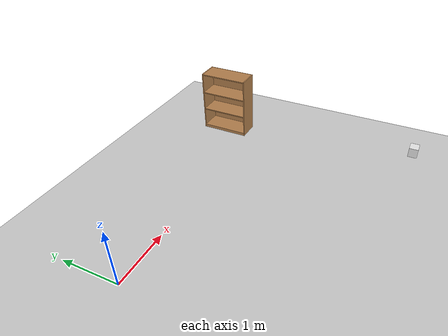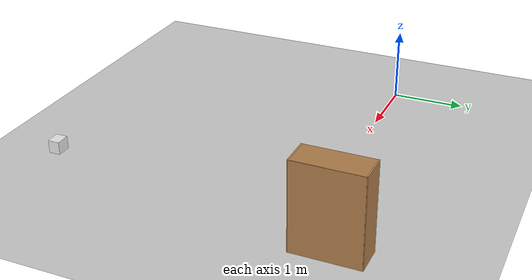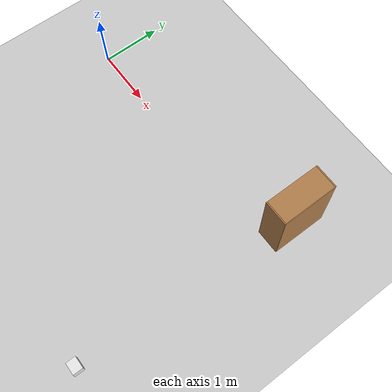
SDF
<sdf version="1.6">
 <world name="default">
  <model name="ground_plane">
   <static>1</static>
   <link name="link">
    <collision name="collision">
     <geometry><plane><normal>0 0 1</normal><size>100 100</size></plane></geometry>
     <surface>
      <contact><collide_bitmask>65535</collide_bitmask></contact>
      <friction><ode><mu>100</mu><mu2>50</mu2></ode></friction>
     </surface>
    </collision>
    <visual name="visual">
     <cast_shadows>0</cast_shadows>
     <geometry><plane><normal>0 0 1</normal><size>100 100</size></plane></geometry>
     <material>
      <script><uri>file://media/materials/scripts/gazebo.material</uri><name>Gazebo/Grey</name></script>
     </material>
    </visual>
   </link>
  </model>
  <model name="bookshelf_clone_0_clone">
   <static>1</static>
   <link name="link">
    <inertial><mass>1</mass></inertial>
    <collision name="back">
     <pose>0 0.005 0.6 0 -0 0</pose>
     <geometry><box><size>0.9 0.01 1.2</size></box></geometry>
    </collision>
    <visual name="visual1">
     <pose>0 0.005 0.6 0 -0 0</pose>
     <geometry><box><size>0.9 0.01 1.2</size></box></geometry>
     <material>
      <script><uri>file://media/materials/scripts/gazebo.material</uri><name>Gazebo/Wood</name></script>
     </material>
    </visual>
    <collision name="left_side">
     <pose>0.45 -0.195 0.6 0 -0 0</pose>
     <geometry><box><size>0.02 0.4 1.2</size></box></geometry>
    </collision>
    <visual name="visual2">
     <pose>0.45 -0.195 0.6 0 -0 0</pose>
     <geometry><box><size>0.02 0.4 1.2</size></box></geometry>
     <material>
      <script><uri>file://media/materials/scripts/gazebo.material</uri><name>Gazebo/Wood</name></script>
     </material>
    </visual>
    <collision name="right_side">
     <pose>-0.45 -0.195 0.6 0 -0 0</pose>
     <geometry><box><size>0.02 0.4 1.2</size></box></geometry>
    </collision>
    <visual name="visual3">
     <pose>-0.45 -0.195 0.6 0 -0 0</pose>
     <geometry><box><size>0.02 0.4 1.2</size></box></geometry>
     <material>
      <script><uri>file://media/materials/scripts/gazebo.material</uri><name>Gazebo/Wood</name></script>
     </material>
    </visual>
    <collision name="bottom">
     <pose>0 -0.195 0.03 0 -0 0</pose>
     <geometry><box><size>0.88 0.4 0.06</size></box></geometry>
    </collision>
    <visual name="visual4">
     <pose>0 -0.195 0.03 0 -0 0</pose>
     <geometry><box><size>0.88 0.4 0.06</size></box></geometry>
     <material>
      <script><uri>file://media/materials/scripts/gazebo.material</uri><name>Gazebo/Wood</name></script>
     </material>
    </visual>
    <collision name="top">
     <pose>0 -0.195 1.19 0 -0 0</pose>
     <geometry><box><size>0.88 0.4 0.02</size></box></geometry>
    </collision>
    <visual name="visual5">
     <pose>0 -0.195 1.19 0 -0 0</pose>
     <geometry><box><size>0.88 0.4 0.02</size></box></geometry>
     <material>
      <script><uri>file://media/materials/scripts/gazebo.material</uri><name>Gazebo/Wood</name></script>
     </material>
    </visual>
    <collision name="low_shelf">
     <pose>0 -0.195 0.43 0 -0 0</pose>
     <geometry><box><size>0.88 0.4 0.02</size></box></geometry>
    </collision>
    <visual name="visual6">
     <pose>0 -0.195 0.43 0 -0 0</pose>
     <geometry><box><size>0.88 0.4 0.02</size></box></geometry>
     <material>
      <script><uri>file://media/materials/scripts/gazebo.material</uri><name>Gazebo/Wood</name></script>
     </material>
    </visual>
    <collision name="high_shelf">
     <pose>0 -0.195 0.8 0 -0 0</pose>
     <geometry><box><size>0.88 0.4 0.02</size></box></geometry>
    </collision>
    <visual name="visual7">
     <pose>0 -0.195 0.8 0 -0 0</pose>
     <geometry><box><size>0.88 0.4 0.02</size></box></geometry>
     <material>
      <script><uri>file://media/materials/scripts/gazebo.material</uri><name>Gazebo/Wood</name></script>
     </material>
    </visual>
   </link>
   <pose>4.43785 0.538857 0 0 0 -1.5708</pose>
  </model>
  <model name="package_box_0_clone_0">
   <link name="link">
    <inertial>
     <mass>1</mass>
     <inertia>
      <ixx>0.166667</ixx>
      <ixy>0</ixy>
      <ixz>0</ixz>
      <iyy>0.166667</iyy>
      <iyz>0</iyz>
      <izz>0.166667</izz>
     </inertia>
    </inertial>
    <visual name="visual">
     <geometry><box><size>0.186354 0.153313 0.168908</size></box></geometry>
     <material>
      <script><name>Gazebo/White</name><uri>file://media/materials/scripts/gazebo.material</uri></script>
      <shader type="pixel"><normal_map>__default__</normal_map></shader>
      <ambient>1 1 1 1</ambient>
      <diffuse>1 1 1 1</diffuse>
      <specular>0 0 0 1</specular>
      <emissive>0 0 0 1</emissive>
     </material>
    </visual>
    <collision name="collision">
     <geometry><box><size>0.186354 0.153313 0.168908</size></box></geometry>
     <surface>
      <friction>
       <ode><mu>1</mu><mu2>1</mu2><fdir1>0 0 0</fdir1><slip1>0</slip1><slip2>0</slip2></ode>
       <torsional>
        <coefficient>1</coefficient>
        <patch_radius>0</patch_radius>
        <surface_radius>0</surface_radius>
        <use_patch_radius>1</use_patch_radius>
        <ode><slip>0</slip></ode>
       </torsional>
      </friction>
      <bounce><restitution_coefficient>0</restitution_coefficient><threshold>1e+06</threshold></bounce>
      <contact>
       <collide_without_contact>0</collide_without_contact>
       <collide_without_contact_bitmask>1</collide_without_contact_bitmask>
       <collide_bitmask>1</collide_bitmask>
       <ode>
        <soft_cfm>0</soft_cfm>
        <soft_erp>0.2</soft_erp>
        <kp>1e+13</kp>
        <kd>1</kd>
        <max_vel>0.01</max_vel>
        <min_depth>0</min_depth>
       </ode>
       <bullet>
        <split_impulse>1</split_impulse>
        <split_impulse_penetration_threshold>-0.01</split_impulse_penetration_threshold>
        <soft_cfm>0</soft_cfm>
        <soft_erp>0.2</soft_erp>
        <kp>1e+13</kp>
        <kd>1</kd>
       </bullet>
      </contact>
     </surface>
    </collision>
   </link>
   <static>0</static>
   <pose>4.14454 -3.1682 0.524454 1e-06 4e-06 0.000102</pose>
  </model>
  <model name="small_box">
   <link name="link">
    <inertial>
     <mass>0.1</mass>
     <inertia>
      <ixx>4.17e-06</ixx>
      <ixy>0</ixy>
      <ixz>0</ixz>
      <iyy>5.42e-06</iyy>
      <iyz>0</iyz>
      <izz>2.08e-06</izz>
     </inertia>
    </inertial>
    <visual name="visual">
     <geometry><box><size>0.02 0.02 0.03</size></box></geometry>
     <material>
      <script><name>Gazebo/Grey</name><uri>file://media/materials/scripts/gazebo.material</uri></script>
      <shader type="vertex"><normal_map>__default__</normal_map></shader>
      <ambient>0.3 0.3 0.3 1</ambient>
      <diffuse>0.7 0.7 0.7 1</diffuse>
      <specular>0.01 0.01 0.01 1</specular>
      <emissive>0 0 0 1</emissive>
     </material>
    </visual>
    <collision name="collision">
     <geometry><box><size>0.02 0.02 0.03</size></box></geometry>
     <surface>
      <friction>
       <ode><mu>1</mu><mu2>1</mu2><fdir1>0 0 0</fdir1><slip1>0</slip1><slip2>0</slip2></ode>
       <torsional>
        <coefficient>1</coefficient>
        <patch_radius>0</patch_radius>
        <surface_radius>0</surface_radius>
        <use_patch_radius>1</use_patch_radius>
        <ode><slip>0</slip></ode>
       </torsional>
      </friction>
      <bounce><restitution_coefficient>0</restitution_coefficient><threshold>1e+06</threshold></bounce>
      <contact>
       <collide_without_contact>0</collide_without_contact>
       <collide_without_contact_bitmask>1</collide_without_contact_bitmask>
       <collide_bitmask>1</collide_bitmask>
       <ode>
        <soft_cfm>0</soft_cfm>
        <soft_erp>0.2</soft_erp>
        <kp>1e+13</kp>
        <kd>1</kd>
        <max_vel>0.01</max_vel>
        <min_depth>0</min_depth>
       </ode>
       <bullet>
        <split_impulse>1</split_impulse>
        <split_impulse_penetration_threshold>-0.01</split_impulse_penetration_threshold>
        <soft_cfm>0</soft_cfm>
        <soft_erp>0.2</soft_erp>
        <kp>1e+13</kp>
        <kd>1</kd>
       </bullet>
      </contact>
     </surface>
    </collision>
   </link>
   <static>0</static>
   <pose>0.218425 0.002488 0.015 -5.1e-05 1e-05 1.1e-05</pose>
  </model>
 </world>
</sdf>
